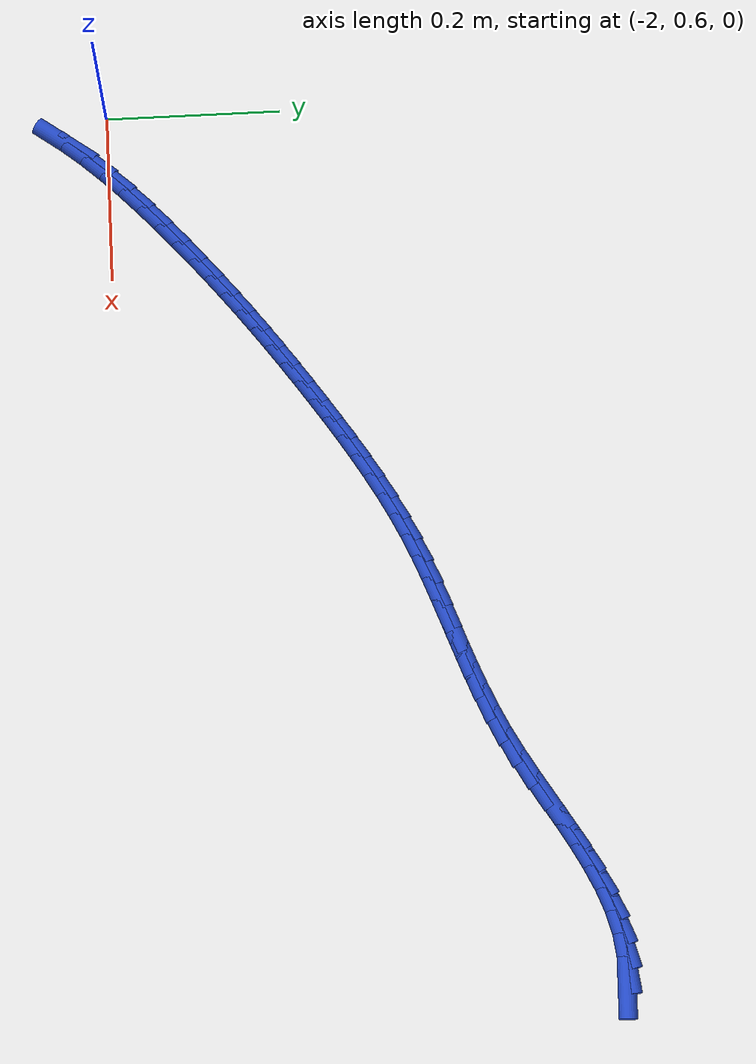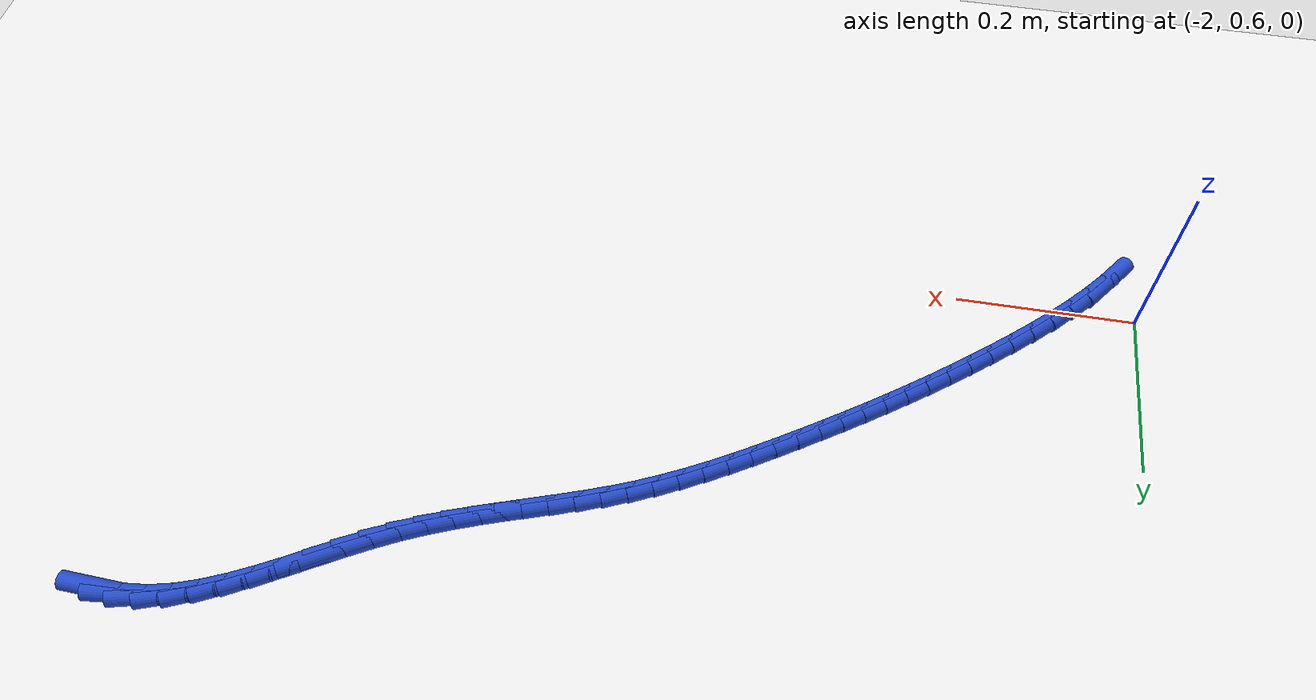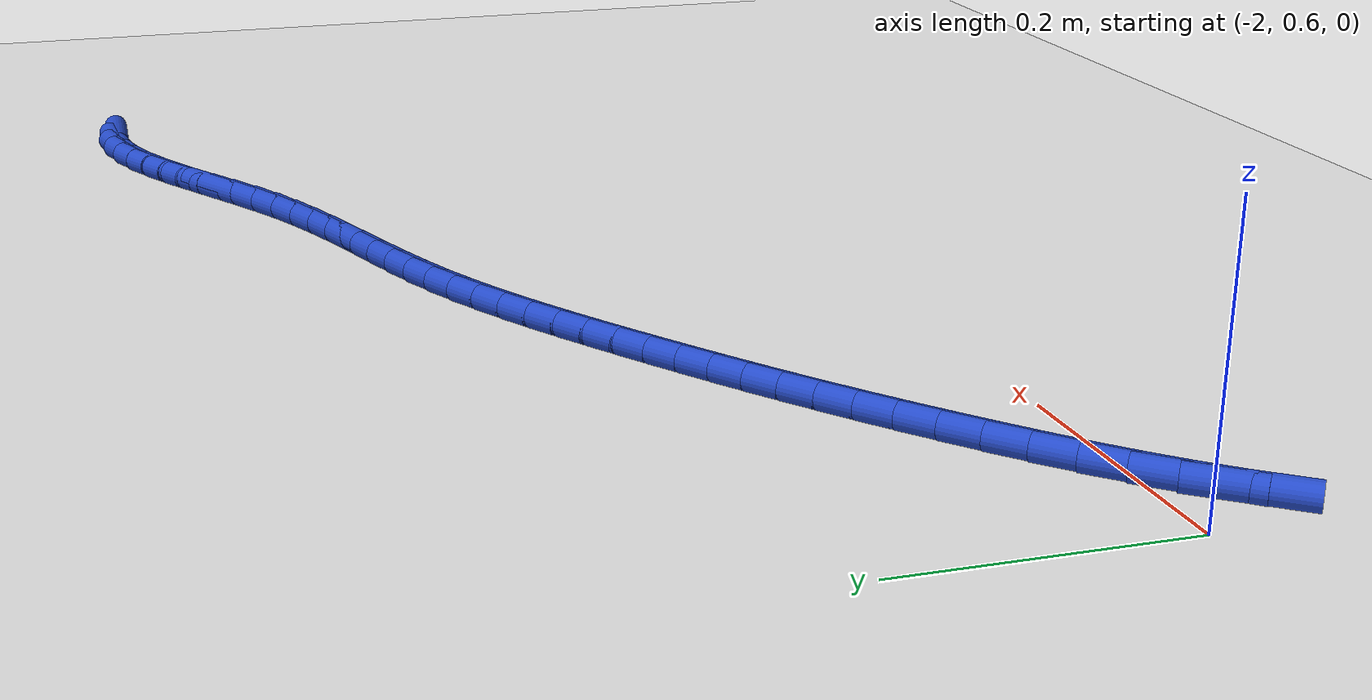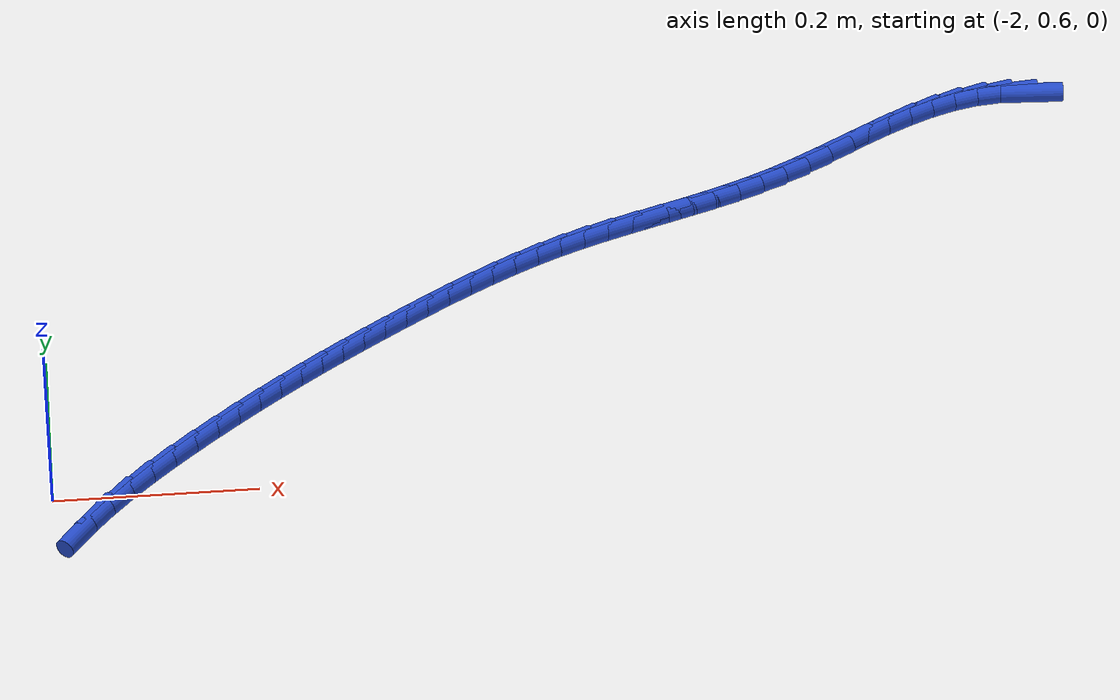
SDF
<sdf version="1.6">
 <world name="default">
  <model name="ground_plane">
   <static>1</static>
   <link name="link">
    <collision name="collision">
     <geometry><plane><normal>0 0 1</normal><size>100 100</size></plane></geometry>
     <surface><friction><ode><mu>100</mu><mu2>50</mu2></ode></friction></surface>
    </collision>
    <visual name="visual">
     <cast_shadows>0</cast_shadows>
     <geometry><plane><normal>0 0 1</normal><size>100 100</size></plane></geometry>
     <material>
      <script><uri>file://media/materials/scripts/gazebo.material</uri><name>Gazebo/WhiteGlow</name></script>
     </material>
    </visual>
   </link>
  </model>
  <model name="line">
   <link name="link_61">
    <pose>-0.9821783568592413 1.1197950227113316 0.01 0 1.57 -0.04500595836349071</pose>
    <collision name="collision">
     <geometry><cylinder><radius>0.01</radius><length>0.08</length></cylinder></geometry>
    </collision>
    <visual name="visual">
     <material>
      <script><name>Gazebo/Blue</name><uri>file://media/materials/scripts/gazebo.material</uri></script>
     </material>
     <geometry><cylinder><radius>0.01</radius><length>0.08</length></cylinder></geometry>
    </visual>
   </link>
   <link name="link_62">
    <pose>-1.0075660268549216 1.120938391212498 0.01 0 1.57 0.10803287013768177</pose>
    <collision name="collision">
     <geometry><cylinder><radius>0.01</radius><length>0.08</length></cylinder></geometry>
    </collision>
    <visual name="visual">
     <material>
      <script><name>Gazebo/Blue</name><uri>file://media/materials/scripts/gazebo.material</uri></script>
     </material>
     <geometry><cylinder><radius>0.01</radius><length>0.08</length></cylinder></geometry>
    </visual>
   </link>
   <link name="link_63">
    <pose>-1.032708339608371 1.1182115784381603 0.01 0 1.57 0.24081633196380592</pose>
    <collision name="collision">
     <geometry><cylinder><radius>0.01</radius><length>0.08</length></cylinder></geometry>
    </collision>
    <visual name="visual">
     <material>
      <script><name>Gazebo/Blue</name><uri>file://media/materials/scripts/gazebo.material</uri></script>
     </material>
     <geometry><cylinder><radius>0.01</radius><length>0.08</length></cylinder></geometry>
    </visual>
   </link>
   <link name="link_64">
    <pose>-1.0576394874435977 1.1120889349264704 0.01 0 1.57 0.3471244736066722</pose>
    <collision name="collision">
     <geometry><cylinder><radius>0.01</radius><length>0.08</length></cylinder></geometry>
    </collision>
    <visual name="visual">
     <material>
      <script><name>Gazebo/Blue</name><uri>file://media/materials/scripts/gazebo.material</uri></script>
     </material>
     <geometry><cylinder><radius>0.01</radius><length>0.08</length></cylinder></geometry>
    </visual>
   </link>
   <link name="link_65">
    <pose>-1.0824085718132321 1.10312814340527 0.01 0 1.57 0.4277673402619732</pose>
    <collision name="collision">
     <geometry><cylinder><radius>0.01</radius><length>0.08</length></cylinder></geometry>
    </collision>
    <visual name="visual">
     <material>
      <script><name>Gazebo/Blue</name><uri>file://media/materials/scripts/gazebo.material</uri></script>
     </material>
     <geometry><cylinder><radius>0.01</radius><length>0.08</length></cylinder></geometry>
    </visual>
   </link>
   <link name="link_66">
    <pose>-1.107064694169904 1.0918868866024027 0.01 0 1.57 0.48513823082255536</pose>
    <collision name="collision">
     <geometry><cylinder><radius>0.01</radius><length>0.08</length></cylinder></geometry>
    </collision>
    <visual name="visual">
     <material>
      <script><name>Gazebo/Blue</name><uri>file://media/materials/scripts/gazebo.material</uri></script>
     </material>
     <geometry><cylinder><radius>0.01</radius><length>0.08</length></cylinder></geometry>
    </visual>
   </link>
   <link name="link_67">
    <pose>-1.1316569559662435 1.0789228472457113 0.01 0 1.57 0.5217448392616452</pose>
    <collision name="collision">
     <geometry><cylinder><radius>0.01</radius><length>0.08</length></cylinder></geometry>
    </collision>
    <visual name="visual">
     <material>
      <script><name>Gazebo/Blue</name><uri>file://media/materials/scripts/gazebo.material</uri></script>
     </material>
     <geometry><cylinder><radius>0.01</radius><length>0.08</length></cylinder></geometry>
    </visual>
   </link>
   <link name="link_68">
    <pose>-1.1562344586548812 1.0647937080630392 0.01 0 1.57 0.5395062781494867</pose>
    <collision name="collision">
     <geometry><cylinder><radius>0.01</radius><length>0.08</length></cylinder></geometry>
    </collision>
    <visual name="visual">
     <material>
      <script><name>Gazebo/Blue</name><uri>file://media/materials/scripts/gazebo.material</uri></script>
     </material>
     <geometry><cylinder><radius>0.01</radius><length>0.08</length></cylinder></geometry>
    </visual>
   </link>
   <link name="link_69">
    <pose>-1.1808463036884471 1.0500571517822288 0.01 0 1.57 0.5394994722463647</pose>
    <collision name="collision">
     <geometry><cylinder><radius>0.01</radius><length>0.08</length></cylinder></geometry>
    </collision>
    <visual name="visual">
     <material>
      <script><name>Gazebo/Blue</name><uri>file://media/materials/scripts/gazebo.material</uri></script>
     </material>
     <geometry><cylinder><radius>0.01</radius><length>0.08</length></cylinder></geometry>
    </visual>
   </link>
   <link name="link_70">
    <pose>-1.2055415925195707 1.035270861131123 0.01 0 1.57 0.5219050378877268</pose>
    <collision name="collision">
     <geometry><cylinder><radius>0.01</radius><length>0.08</length></cylinder></geometry>
    </collision>
    <visual name="visual">
     <material>
      <script><name>Gazebo/Blue</name><uri>file://media/materials/scripts/gazebo.material</uri></script>
     </material>
     <geometry><cylinder><radius>0.01</radius><length>0.08</length></cylinder></geometry>
    </visual>
   </link>
   <link name="link_71">
    <pose>-1.2303694266008836 1.0209925188375653 0.01 0 1.57 0.4860750051244656</pose>
    <collision name="collision">
     <geometry><cylinder><radius>0.01</radius><length>0.08</length></cylinder></geometry>
    </collision>
    <visual name="visual">
     <material>
      <script><name>Gazebo/Blue</name><uri>file://media/materials/scripts/gazebo.material</uri></script>
     </material>
     <geometry><cylinder><radius>0.01</radius><length>0.08</length></cylinder></geometry>
    </visual>
   </link>
   <link name="link_72">
    <pose>-1.2553787607886444 1.0077786623940896 0.01 0 1.57 0.43884690385221387</pose>
    <collision name="collision">
     <geometry><cylinder><radius>0.01</radius><length>0.08</length></cylinder></geometry>
    </collision>
    <visual name="visual">
     <material>
      <script><name>Gazebo/Blue</name><uri>file://media/materials/scripts/gazebo.material</uri></script>
     </material>
     <geometry><cylinder><radius>0.01</radius><length>0.08</length></cylinder></geometry>
    </visual>
   </link>
   <link name="link_73">
    <pose>-1.2805878753173927 0.9959461940297539 0.01 0 1.57 0.398182398537582</pose>
    <collision name="collision">
     <geometry><cylinder><radius>0.01</radius><length>0.08</length></cylinder></geometry>
    </collision>
    <visual name="visual">
     <material>
      <script><name>Gazebo/Blue</name><uri>file://media/materials/scripts/gazebo.material</uri></script>
     </material>
     <geometry><cylinder><radius>0.01</radius><length>0.08</length></cylinder></geometry>
    </visual>
   </link>
   <link name="link_74">
    <pose>-1.3059468085409323 0.9852788990139479 0.01 0 1.57 0.36723988304731636</pose>
    <collision name="collision">
     <geometry><cylinder><radius>0.01</radius><length>0.08</length></cylinder></geometry>
    </collision>
    <visual name="visual">
     <material>
      <script><name>Gazebo/Blue</name><uri>file://media/materials/scripts/gazebo.material</uri></script>
     </material>
     <geometry><cylinder><radius>0.01</radius><length>0.08</length></cylinder></geometry>
    </visual>
   </link>
   <link name="link_75">
    <pose>-1.3313963957325856 0.9754886666156549 0.01 0 1.57 0.3465312504538547</pose>
    <collision name="collision">
     <geometry><cylinder><radius>0.01</radius><length>0.08</length></cylinder></geometry>
    </collision>
    <visual name="visual">
     <material>
      <script><name>Gazebo/Blue</name><uri>file://media/materials/scripts/gazebo.material</uri></script>
     </material>
     <geometry><cylinder><radius>0.01</radius><length>0.08</length></cylinder></geometry>
    </visual>
   </link>
   <link name="link_76">
    <pose>-1.356877472165676 0.9662873861038577 0.01 0 1.57 0.3363860062045474</pose>
    <collision name="collision">
     <geometry><cylinder><radius>0.01</radius><length>0.08</length></cylinder></geometry>
    </collision>
    <visual name="visual">
     <material>
      <script><name>Gazebo/Blue</name><uri>file://media/materials/scripts/gazebo.material</uri></script>
     </material>
     <geometry><cylinder><radius>0.01</radius><length>0.08</length></cylinder></geometry>
    </visual>
   </link>
   <link name="link_77">
    <pose>-1.3823308731135262 0.9573869467475392 0.01 0 1.57 0.337005352391431</pose>
    <collision name="collision">
     <geometry><cylinder><radius>0.01</radius><length>0.08</length></cylinder></geometry>
    </collision>
    <visual name="visual">
     <material>
      <script><name>Gazebo/Blue</name><uri>file://media/materials/scripts/gazebo.material</uri></script>
     </material>
     <geometry><cylinder><radius>0.01</radius><length>0.08</length></cylinder></geometry>
    </visual>
   </link>
   <link name="link_78">
    <pose>-1.4076974338494592 0.9484992378156825 0.01 0 1.57 0.3484900497054058</pose>
    <collision name="collision">
     <geometry><cylinder><radius>0.01</radius><length>0.08</length></cylinder></geometry>
    </collision>
    <visual name="visual">
     <material>
      <script><name>Gazebo/Blue</name><uri>file://media/materials/scripts/gazebo.material</uri></script>
     </material>
     <geometry><cylinder><radius>0.01</radius><length>0.08</length></cylinder></geometry>
    </visual>
   </link>
   <link name="link_79">
    <pose>-1.432917989646798 0.9393361485772707 0.01 0 1.57 0.37083484582573073</pose>
    <collision name="collision">
     <geometry><cylinder><radius>0.01</radius><length>0.08</length></cylinder></geometry>
    </collision>
    <visual name="visual">
     <material>
      <script><name>Gazebo/Blue</name><uri>file://media/materials/scripts/gazebo.material</uri></script>
     </material>
     <geometry><cylinder><radius>0.01</radius><length>0.08</length></cylinder></geometry>
    </visual>
   </link>
   <link name="link_80">
    <pose>-1.4579333757788657 0.9296095683012866 0.01 0 1.57 0.4038705799674041</pose>
    <collision name="collision">
     <geometry><cylinder><radius>0.01</radius><length>0.08</length></cylinder></geometry>
    </collision>
    <visual name="visual">
     <material>
      <script><name>Gazebo/Blue</name><uri>file://media/materials/scripts/gazebo.material</uri></script>
     </material>
     <geometry><cylinder><radius>0.01</radius><length>0.08</length></cylinder></geometry>
    </visual>
   </link>
   <link name="link_81">
    <pose>-1.4826844880903323 0.9190318541826664 0.01 0 1.57 0.4430424385501242</pose>
    <collision name="collision">
     <geometry><cylinder><radius>0.01</radius><length>0.08</length></cylinder></geometry>
    </collision>
    <visual name="visual">
     <material>
      <script><name>Gazebo/Blue</name><uri>file://media/materials/scripts/gazebo.material</uri></script>
     </material>
     <geometry><cylinder><radius>0.01</radius><length>0.08</length></cylinder></geometry>
    </visual>
   </link>
   <link name="link_82">
    <pose>-1.5071275238153965 0.9074335697565526 0.01 0 1.57 0.47849826891946695</pose>
    <collision name="collision">
     <geometry><cylinder><radius>0.01</radius><length>0.08</length></cylinder></geometry>
    </collision>
    <visual name="visual">
     <material>
      <script><name>Gazebo/Blue</name><uri>file://media/materials/scripts/gazebo.material</uri></script>
     </material>
     <geometry><cylinder><radius>0.01</radius><length>0.08</length></cylinder></geometry>
    </visual>
   </link>
   <link name="link_83">
    <pose>-1.5312541151043764 0.8949190204781869 0.01 0 1.57 0.5090824668394416</pose>
    <collision name="collision">
     <geometry><cylinder><radius>0.01</radius><length>0.08</length></cylinder></geometry>
    </collision>
    <visual name="visual">
     <material>
      <script><name>Gazebo/Blue</name><uri>file://media/materials/scripts/gazebo.material</uri></script>
     </material>
     <geometry><cylinder><radius>0.01</radius><length>0.08</length></cylinder></geometry>
    </visual>
   </link>
   <link name="link_84">
    <pose>-1.555060896109739 0.8816311532847909 0.01 0 1.57 0.5350189812152231</pose>
    <collision name="collision">
     <geometry><cylinder><radius>0.01</radius><length>0.08</length></cylinder></geometry>
    </collision>
    <visual name="visual">
     <material>
      <script><name>Gazebo/Blue</name><uri>file://media/materials/scripts/gazebo.material</uri></script>
     </material>
     <geometry><cylinder><radius>0.01</radius><length>0.08</length></cylinder></geometry>
    </visual>
   </link>
   <link name="link_85">
    <pose>-1.5785445009839503 0.8677129151135854 0.01 0 1.57 0.5565004118699376</pose>
    <collision name="collision">
     <geometry><cylinder><radius>0.01</radius><length>0.08</length></cylinder></geometry>
    </collision>
    <visual name="visual">
     <material>
      <script><name>Gazebo/Blue</name><uri>file://media/materials/scripts/gazebo.material</uri></script>
     </material>
     <geometry><cylinder><radius>0.01</radius><length>0.08</length></cylinder></geometry>
    </visual>
   </link>
   <link name="link_86">
    <pose>-1.6017015638794763 0.8533072529017917 0.01 0 1.57 0.5736754842337437</pose>
    <collision name="collision">
     <geometry><cylinder><radius>0.01</radius><length>0.08</length></cylinder></geometry>
    </collision>
    <visual name="visual">
     <material>
      <script><name>Gazebo/Blue</name><uri>file://media/materials/scripts/gazebo.material</uri></script>
     </material>
     <geometry><cylinder><radius>0.01</radius><length>0.08</length></cylinder></geometry>
    </visual>
   </link>
   <link name="link_87">
    <pose>-1.6245287189487843 0.8385571135866317 0.01 0 1.57 0.5866394132417062</pose>
    <collision name="collision">
     <geometry><cylinder><radius>0.01</radius><length>0.08</length></cylinder></geometry>
    </collision>
    <visual name="visual">
     <material>
      <script><name>Gazebo/Blue</name><uri>file://media/materials/scripts/gazebo.material</uri></script>
     </material>
     <geometry><cylinder><radius>0.01</radius><length>0.08</length></cylinder></geometry>
    </visual>
   </link>
   <link name="link_88">
    <pose>-1.6470226003443407 0.8236054441053265 0.01 0 1.57 0.5961312622181127</pose>
    <collision name="collision">
     <geometry><cylinder><radius>0.01</radius><length>0.08</length></cylinder></geometry>
    </collision>
    <visual name="visual">
     <material>
      <script><name>Gazebo/Blue</name><uri>file://media/materials/scripts/gazebo.material</uri></script>
     </material>
     <geometry><cylinder><radius>0.01</radius><length>0.08</length></cylinder></geometry>
    </visual>
   </link>
   <link name="link_89">
    <pose>-1.6691882941673888 0.80856663486908 0.01 0 1.57 0.6057436194269661</pose>
    <collision name="collision">
     <geometry><cylinder><radius>0.01</radius><length>0.08</length></cylinder></geometry>
    </collision>
    <visual name="visual">
     <material>
      <script><name>Gazebo/Blue</name><uri>file://media/materials/scripts/gazebo.material</uri></script>
     </material>
     <geometry><cylinder><radius>0.01</radius><length>0.08</length></cylinder></geometry>
    </visual>
   </link>
   <link name="link_90">
    <pose>-1.6910743197654523 0.7934083287566399 0.01 0 1.57 0.6165563024757809</pose>
    <collision name="collision">
     <geometry><cylinder><radius>0.01</radius><length>0.08</length></cylinder></geometry>
    </collision>
    <visual name="visual">
     <material>
      <script><name>Gazebo/Blue</name><uri>file://media/materials/scripts/gazebo.material</uri></script>
     </material>
     <geometry><cylinder><radius>0.01</radius><length>0.08</length></cylinder></geometry>
    </visual>
   </link>
   <link name="link_91">
    <pose>-1.7127431093770857 0.7780511612825145 0.01 0 1.57 0.6284579848128597</pose>
    <collision name="collision">
     <geometry><cylinder><radius>0.01</radius><length>0.08</length></cylinder></geometry>
    </collision>
    <visual name="visual">
     <material>
      <script><name>Gazebo/Blue</name><uri>file://media/materials/scripts/gazebo.material</uri></script>
     </material>
     <geometry><cylinder><radius>0.01</radius><length>0.08</length></cylinder></geometry>
    </visual>
   </link>
   <link name="link_92">
    <pose>-1.7342571015525952 0.7624157466357496 0.01 0 1.57 0.6413112505708879</pose>
    <collision name="collision">
     <geometry><cylinder><radius>0.01</radius><length>0.08</length></cylinder></geometry>
    </collision>
    <visual name="visual">
     <material>
      <script><name>Gazebo/Blue</name><uri>file://media/materials/scripts/gazebo.material</uri></script>
     </material>
     <geometry><cylinder><radius>0.01</radius><length>0.08</length></cylinder></geometry>
    </visual>
   </link>
   <link name="link_93">
    <pose>-1.7556787348422869 0.7464226990053918 0.01 0 1.57 0.6549581235944474</pose>
    <collision name="collision">
     <geometry><cylinder><radius>0.01</radius><length>0.08</length></cylinder></geometry>
    </collision>
    <visual name="visual">
     <material>
      <script><name>Gazebo/Blue</name><uri>file://media/materials/scripts/gazebo.material</uri></script>
     </material>
     <geometry><cylinder><radius>0.01</radius><length>0.08</length></cylinder></geometry>
    </visual>
   </link>
   <link name="link_94">
    <pose>-1.7770704477964672 0.7299926325804869 0.01 0 1.57 0.6692262428386655</pose>
    <collision name="collision">
     <geometry><cylinder><radius>0.01</radius><length>0.08</length></cylinder></geometry>
    </collision>
    <visual name="visual">
     <material>
      <script><name>Gazebo/Blue</name><uri>file://media/materials/scripts/gazebo.material</uri></script>
     </material>
     <geometry><cylinder><radius>0.01</radius><length>0.08</length></cylinder></geometry>
    </visual>
   </link>
   <link name="link_95">
    <pose>-1.7984946789654421 0.7130461615500807 0.01 0 1.57 0.6839357194155656</pose>
    <collision name="collision">
     <geometry><cylinder><radius>0.01</radius><length>0.08</length></cylinder></geometry>
    </collision>
    <visual name="visual">
     <material>
      <script><name>Gazebo/Blue</name><uri>file://media/materials/scripts/gazebo.material</uri></script>
     </material>
     <geometry><cylinder><radius>0.01</radius><length>0.08</length></cylinder></geometry>
    </visual>
   </link>
   <link name="link_96">
    <pose>-1.820013866899518 0.69550390010322 0.01 0 1.57 0.6989061182299622</pose>
    <collision name="collision">
     <geometry><cylinder><radius>0.01</radius><length>0.08</length></cylinder></geometry>
    </collision>
    <visual name="visual">
     <material>
      <script><name>Gazebo/Blue</name><uri>file://media/materials/scripts/gazebo.material</uri></script>
     </material>
     <geometry><cylinder><radius>0.01</radius><length>0.08</length></cylinder></geometry>
    </visual>
   </link>
   <link name="link_97">
    <pose>-1.841690450149002 0.6772864624289505 0.01 0 1.57 0.7141485711446259</pose>
    <collision name="collision">
     <geometry><cylinder><radius>0.01</radius><length>0.08</length></cylinder></geometry>
    </collision>
    <visual name="visual">
     <material>
      <script><name>Gazebo/Blue</name><uri>file://media/materials/scripts/gazebo.material</uri></script>
     </material>
     <geometry><cylinder><radius>0.01</radius><length>0.08</length></cylinder></geometry>
    </visual>
   </link>
   <link name="link_98">
    <pose>-1.8635743801478564 0.6583181719075503 0.01 0 1.57 0.7326440340805234</pose>
    <collision name="collision">
     <geometry><cylinder><radius>0.01</radius><length>0.08</length></cylinder></geometry>
    </collision>
    <visual name="visual">
     <material>
      <script><name>Gazebo/Blue</name><uri>file://media/materials/scripts/gazebo.material</uri></script>
     </material>
     <geometry><cylinder><radius>0.01</radius><length>0.08</length></cylinder></geometry>
    </visual>
   </link>
   <link name="link_99">
    <pose>-1.8855074759100012 0.6385851758765901 0.01 0 1.57 0.7571074471507236</pose>
    <collision name="collision">
     <geometry><cylinder><radius>0.01</radius><length>0.08</length></cylinder></geometry>
    </collision>
    <visual name="visual">
     <material>
      <script><name>Gazebo/Blue</name><uri>file://media/materials/scripts/gazebo.material</uri></script>
     </material>
     <geometry><cylinder><radius>0.01</radius><length>0.08</length></cylinder></geometry>
    </visual>
   </link>
   <link name="link_100">
    <pose>-1.9071596982966623 0.6181246706697107 0.01 0 1.57 0.7880798289410872</pose>
    <collision name="collision">
     <geometry><cylinder><radius>0.01</radius><length>0.08</length></cylinder></geometry>
    </collision>
    <visual name="visual">
     <material>
      <script><name>Gazebo/Blue</name><uri>file://media/materials/scripts/gazebo.material</uri></script>
     </material>
     <geometry><cylinder><radius>0.01</radius><length>0.08</length></cylinder></geometry>
    </visual>
   </link>
   <link name="link_101">
    <pose>-1.9281958594137687 0.5969753820143272 0.01 0 1.57 0.8263079932634801</pose>
    <collision name="collision">
     <geometry><cylinder><radius>0.01</radius><length>0.08</length></cylinder></geometry>
    </collision>
    <visual name="visual">
     <material>
      <script><name>Gazebo/Blue</name><uri>file://media/materials/scripts/gazebo.material</uri></script>
     </material>
     <geometry><cylinder><radius>0.01</radius><length>0.08</length></cylinder></geometry>
    </visual>
   </link>
   <link name="link_102">
    <pose>-1.9482807713672472 0.5751760356378549 0.01 0 1.57 0.8728300612827734</pose>
    <collision name="collision">
     <geometry><cylinder><radius>0.01</radius><length>0.08</length></cylinder></geometry>
    </collision>
    <visual name="visual">
     <material>
      <script><name>Gazebo/Blue</name><uri>file://media/materials/scripts/gazebo.material</uri></script>
     </material>
     <geometry><cylinder><radius>0.01</radius><length>0.08</length></cylinder></geometry>
    </visual>
   </link>
   <link name="link_103">
    <pose>-1.9670792462630262 0.5527653572677094 0.01 0 1.57 0.9289852198765904</pose>
    <collision name="collision">
     <geometry><cylinder><radius>0.01</radius><length>0.08</length></cylinder></geometry>
    </collision>
    <visual name="visual">
     <material>
      <script><name>Gazebo/Blue</name><uri>file://media/materials/scripts/gazebo.material</uri></script>
     </material>
     <geometry><cylinder><radius>0.01</radius><length>0.08</length></cylinder></geometry>
    </visual>
   </link>
  </model>
 </world>
</sdf>
